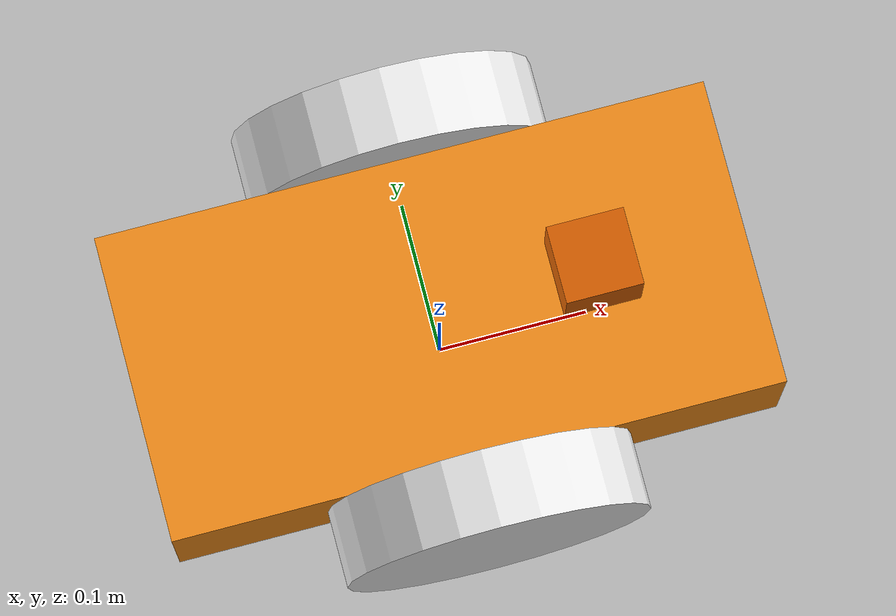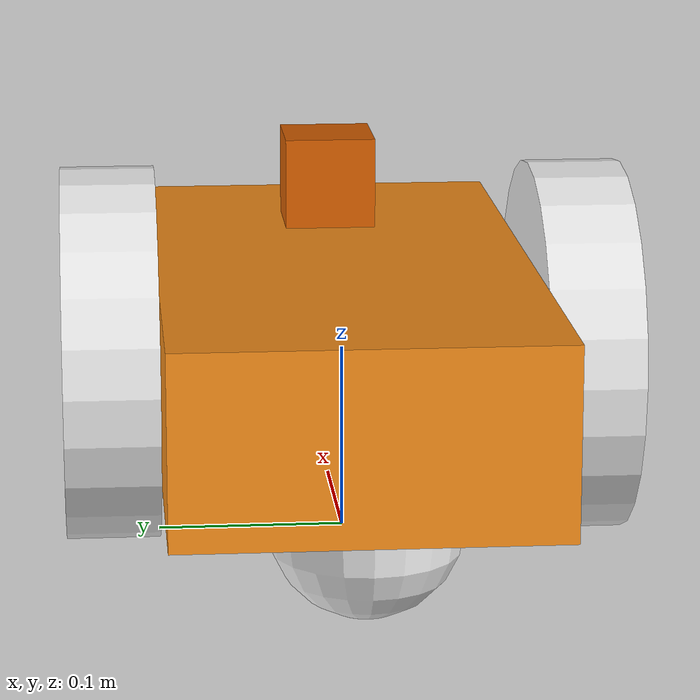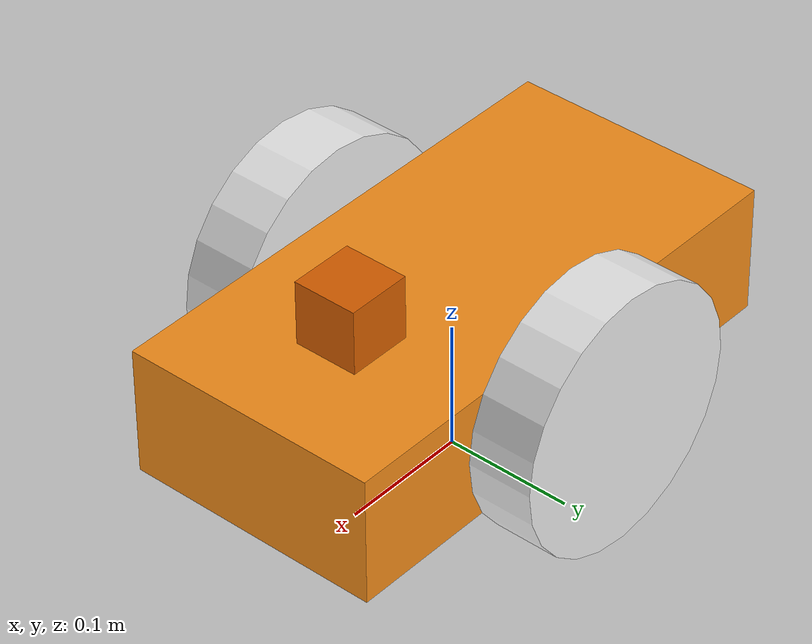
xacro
<?xml version="1.0"?>
<robot name="mybot" xmlns:xacro="http://www.ros.org/wiki/xacro">
        <!-- Put here the robot description -->
<xacro:property name="PI" value="3.1415926535897931"/>

<xacro:property name="chassisHeight" value="0.1"/>
<xacro:property name="chassisLength" value="0.4"/>
<xacro:property name="chassisWidth" value="0.2"/>
<xacro:property name="chassisMass" value="5"/>

<xacro:property name="casterRadius" value="0.05"/>
<xacro:property name="casterMass" value="3"/>

<xacro:property name="wheelWidth" value="0.05"/>
<xacro:property name="wheelRadius" value="0.1"/>
<xacro:property name="wheelPos" value="0.2"/>
<xacro:property name="wheelMass" value="2"/>

<xacro:property name="cameraSize" value="0.05"/>
<xacro:property name="cameraMass" value="0.1"/>
<xacro:include filename="$(find gazebo_models)/models/mybot/mybot.gazebo" />
<xacro:include filename="$(find gazebo_models)/models/mybot/materials.xacro" />
<xacro:include filename="$(find gazebo_models)/models/mybot/macros.xacro" />
<link name="mybot_link" />

<joint name="base_joint" type="fixed">
  <parent link="mybot_link"/>
  <child link="mybot_chassis"/>
</joint>
<link name='mybot_chassis'>
  <collision>
    <origin xyz="0 0 ${wheelRadius}" rpy="0 0 0"/>
    <geometry>
      <box size="${chassisLength} ${chassisWidth} ${chassisHeight}"/>
    </geometry>
  </collision>
  <visual>
    <origin xyz="0 0 ${wheelRadius}" rpy="0 0 0"/>
    <geometry>
      <box size="${chassisLength} ${chassisWidth} ${chassisHeight}"/>
    </geometry>
    <material name="orange"/>
  </visual>
  <inertial>
    <origin xyz="0 0 ${wheelRadius}" rpy="0 0 0"/>
    <mass value="${chassisMass}"/>
    <box_inertia m="${chassisMass}" x="${chassisLength}" y="${chassisWidth}" z="${chassisHeight}"/>
  </inertial>
</link>
<joint name="fixed" type="fixed">
  <parent link="mybot_chassis"/>
  <child link="mybot_caster_wheel"/>
</joint>

<link name="mybot_caster_wheel">
  <collision>
    <origin xyz="${casterRadius-chassisLength/2} 0 ${casterRadius-chassisHeight+wheelRadius}" rpy="0 0 0"/>
    <geometry>
      <sphere radius="${casterRadius}"/>
    </geometry>
  </collision>

  <visual>
    <origin xyz="${casterRadius-chassisLength/2} 0 ${casterRadius-chassisHeight+wheelRadius}" rpy="0 0 0"/>
    <geometry>
      <sphere radius="${casterRadius}"/>
    </geometry>
    <material name="white"/>
  </visual>

  <inertial>
    <origin xyz="${casterRadius-chassisLength/2} 0 ${casterRadius-chassisHeight+wheelRadius}" rpy="0 0 0"/>
    <mass value="${casterMass}"/>
    <sphere_inertia m="${casterMass}" r="${casterRadius}"/>
  </inertial>
</link>

<link name="mybot_left_wheel">
  <collision>
    <origin xyz="0 0 0" rpy="0 ${PI/2} ${PI/2}" />
    <geometry>
      <cylinder length="${wheelWidth}" radius="${wheelRadius}"/>
    </geometry>
  </collision>

  <visual>
    <origin xyz="0 0 0" rpy="0 ${PI/2} ${PI/2}" />
    <geometry>
      <cylinder length="${wheelWidth}" radius="${wheelRadius}"/>
    </geometry>
    <material name="white"/>
  </visual>

  <inertial>
    <origin xyz="0 0 0" rpy="0 ${PI/2} ${PI/2}" />
    <mass value="${wheelMass}"/>
    <cylinder_inertia m="${wheelMass}" r="${wheelRadius}" h="${wheelWidth}"/>
  </inertial>
</link>

<joint name="mybot_left_wheel_hinge" type="continuous">
  <parent link="mybot_chassis"/>
  <child link="mybot_left_wheel"/>
<origin xyz="${-wheelPos+chassisLength/2} ${1*wheelWidth/2+1*chassisWidth/2} ${wheelRadius}" rpy="0 0 0" />
  <axis xyz="0 1 0" rpy="0 0 0" />
  <limit effort="100" velocity="100"/>
  <joint_properties damping="0.0" friction="0.0"/>
</joint>

<transmission name="left_trans">
  <type>transmission_interface/SimpleTransmission</type>
  <joint name="mybot_left_wheel_hinge">
  	<hardwareInterface>EffortJointInterface</hardwareInterface>
  </joint>
  <actuator name="leftMotor">
    <hardwareInterface>EffortJointInterface</hardwareInterface>
    <mechanicalReduction>1</mechanicalReduction>
  </actuator>
</transmission>
<link name="mybot_right_wheel">
  <collision>
    <origin xyz="0 0 0" rpy="0 ${PI/2} ${PI/2}" />
    <geometry>
      <cylinder length="${wheelWidth}" radius="${wheelRadius}"/>
    </geometry>
  </collision>

  <visual>
    <origin xyz="0 0 0" rpy="0 ${PI/2} ${PI/2}" />
    <geometry>
      <cylinder length="${wheelWidth}" radius="${wheelRadius}"/>
    </geometry>
    <material name="white"/>
  </visual>

  <inertial>
    <origin xyz="0 0 0" rpy="0 ${PI/2} ${PI/2}" />
    <mass value="${wheelMass}"/>
    <cylinder_inertia m="${wheelMass}" r="${wheelRadius}" h="${wheelWidth}"/>
  </inertial>
</link>

<joint name="mybot_right_wheel_hinge" type="continuous">
  <parent link="mybot_chassis"/>
  <child link="mybot_right_wheel"/>
<origin xyz="${-wheelPos+chassisLength/2} ${-1*wheelWidth/2+(-1)*chassisWidth/2} ${wheelRadius}" rpy="0 0 0" />
  <axis xyz="0 1 0" rpy="0 0 0" />
  <limit effort="100" velocity="100"/>
  <joint_properties damping="0.0" friction="0.0"/>
</joint>

<transmission name="right_trans">
  <type>transmission_interface/SimpleTransmission</type>
  <joint name="mybot_right_wheel_hinge">
  <hardwareInterface>EffortJointInterface</hardwareInterface>
   </joint>
  <actuator name="rightMotor">
    <hardwareInterface>EffortJointInterface</hardwareInterface>
    <mechanicalReduction>1</mechanicalReduction>
  </actuator>
</transmission>

 <!-- Camera -->
  <link name="camera_link">
    <collision>
      <origin xyz="0 0 0" rpy="0 0 0"/>
      <geometry>
        <box size="0.05 0.05 0.05"/>
      </geometry>
    </collision>
    <visual>
      <origin xyz="0 0 0" rpy="0 0 0"/>
      <geometry>
	    <box size="0.05 0.05 0.05"/>
      </geometry>
    </visual>
    <inertial>
      <mass value="0.1"/>
      <box_inertia m="0.1" x="0.05" y="0.05" z="0.05"/>
    </inertial>
  </link>

  <joint name="camera_joint" type="continuous">
    <axis xyz="0 0 1" />
    <origin xyz="0.1 0 ${wheelRadius+chassisHeight/2+0.025}" rpy="0 0 0"/>
    <parent link="mybot_chassis"/>
    <child link="camera_link"/>
    <limit lower="-${PI/2}" upper="${PI/2}" effort="10" velocity="3"/>
  </joint>

  <!-- generate an optical frame http://www.ros.org/reps/rep-0103.html#suffix-frames
      so that ros and opencv can operate on the camera frame correctly -->
  <joint name="camera_optical_joint" type="fixed">
    <!-- these values have to be these values otherwise the gazebo camera image
        won't be aligned properly with the frame it is supposedly originating from -->
    <origin xyz="0 0 0" rpy="-1.5708 0 -1.5708"/>
    <parent link="camera_link"/>
    <child link="camera_link_optical"/>
  </joint>

  <link name="camera_link_optical">
  </link>

<transmission name="camera_trans">
  <type>transmission_interface/SimpleTransmission</type>
  <joint name="camera_joint">
    <hardwareInterface>PositionJointInterface</hardwareInterface>
  </joint>
  <actuator name="cameraMotor">
    <mechanicalReduction>1</mechanicalReduction>
  </actuator>
</transmission>

</robot>
